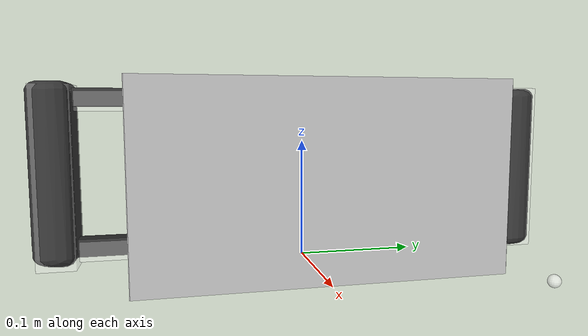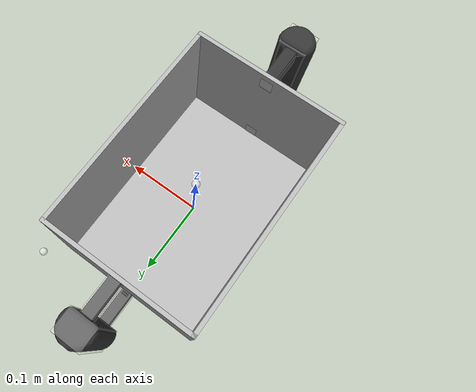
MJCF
<mujoco model="lab_box_handles_v2">
  <default>
    <default class="visual">
      <geom group="1" type="mesh" contype="0" conaffinity="0" density="100"/>
    </default>
    <default class="collision">
      <geom group="0" type="mesh" density="100" solimp="0.95 0.98 0.001" solref="0.004 1" rgba="1 1 1 0.25"/>
    </default>
  </default>
  <asset>
    <mesh file="meshes/handle.obj" name="handle"/>
    <mesh file="meshes/handle_mirror.obj" name="handle_mirror"/>
  </asset>
  <worldbody>
    <body>
      <body name="object">
        <geom name="bottom" type="box" size="0.0975 0.140 0.0025" pos="0 0 0.0025" rgba="0.7 0.7 0.7 1" class="visual"/>
        <geom name="left_wall" type="box" size="0.0975 0.0025 0.075" pos="0 -0.138 0.075" rgba="0.7 0.7 0.7 1" class="visual"/>
        <geom name="right_wall" type="box" size="0.0975 0.0025 0.075" pos="0 0.138 0.075" rgba="0.7 0.7 0.7 1" class="visual"/>
        <geom name="front_wall" type="box" size="0.0025 0.140 0.075" pos="-0.0955 0 0.075" rgba="0.7 0.7 0.7 1" class="visual"/>
        <geom name="back_wall" type="box" size="0.0025 0.140 0.075" pos="0.0955 0 0.075" rgba="0.7 0.7 0.7 1" class="visual"/>
        <geom name="bottom_coll" type="box" size="0.0975 0.140 0.0025" pos="0 0 0.0025" rgba="0.7 0.7 0.7 1" class="collision"/>
        <geom name="left_wall_coll" type="box" size="0.0975 0.0025 0.075" pos="0 -0.138 0.075" rgba="0.7 0.7 0.7 1" class="collision"/>
        <geom name="right_wall_coll" type="box" size="0.0975 0.0025 0.075" pos="0 0.138 0.075" rgba="0.7 0.7 0.7 1" class="collision"/>
        <geom name="front_wall_coll" type="box" size="0.0025 0.140 0.075" pos="-0.0955 0 0.075" rgba="0.7 0.7 0.7 1" class="collision"/>
        <geom name="back_wall_coll" type="box" size="0.0025 0.140 0.075" pos="0.0955 0 0.075" rgba="0.7 0.7 0.7 1" class="collision"/>
        <body name="handle_1" pos="0 0.205 0.075" quat="0.7071068 0 0.7071068 0">
          <geom mesh="handle" class="visual" rgba="0.2 0.2 0.2 1.0"/>
          <geom type="box" pos="-0.059047845301811265 -0.045 0" size="0.008 0.008 0.025" quat="0.5046660647935649 0.504706234998332 -0.4952490447782901 0.49528997874556036" class="collision"/>
          <geom type="box" pos="0.06188433419671608 -0.045 0" size="0.008 0.008 0.025" quat="0.5046660647935649 0.504706234998332 -0.4952490447782901 0.49528997874556036" class="collision"/>
          <geom type="box" pos="0.00145 -0.004 0" size="0.073 0.015 0.018" class="collision"/>
        </body>
        <body name="handle_2" pos="0 -0.205 0.075" quat="0.7071068 0 0.7071068 0">
          <geom mesh="handle_mirror" class="visual" rgba="0.2 0.2 0.2 1.0"/>
          <geom type="box" pos="-0.059047845301811265 0.045 0" size="0.008 0.008 0.025" quat="0.5046660647935649 0.504706234998332 -0.4952490447782901 0.49528997874556036" class="collision"/>
          <geom type="box" pos="0.06188433419671608 0.045 0" size="0.008 0.008 0.025" quat="0.5046660647935649 0.504706234998332 -0.4952490447782901 0.49528997874556036" class="collision"/>
          <geom type="box" pos="0.00145 0.004 0" size="0.073 0.015 0.018" class="collision"/>
        </body>
      </body>
      <site name="bottom_site" pos="0 0 0.000556" rgba="1 1 1 0.5" size="0.005"/>
      <site name="top_site" pos="0 0 0.101" rgba="1 1 1 0.5" size="0.005"/>
      <site name="horizontal_radius_site" pos="0.122875 0.164772 0" rgba="1 1 1 0.5" size="0.005"/>
    </body>
  </worldbody>
</mujoco>
